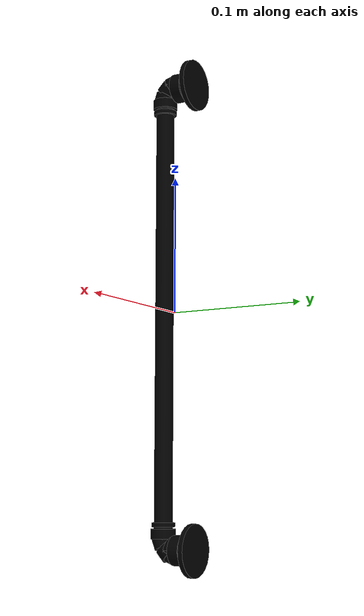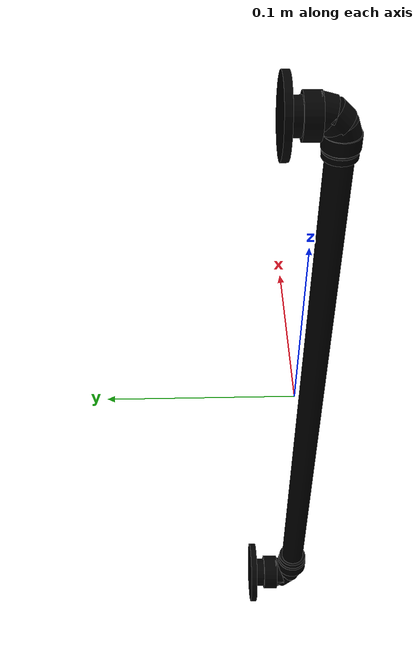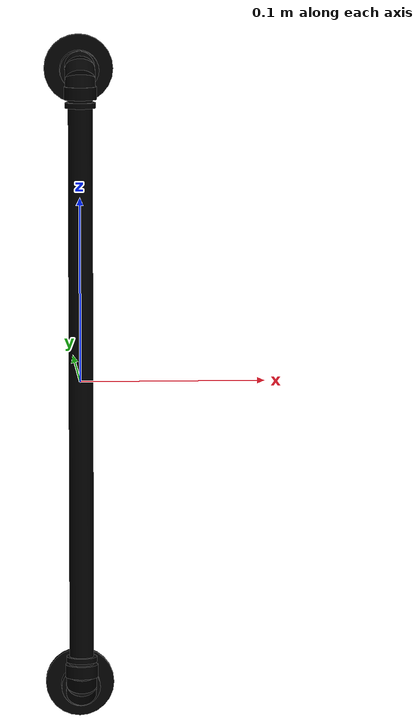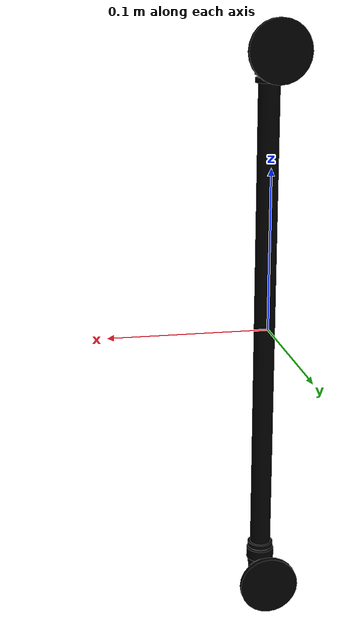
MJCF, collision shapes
<?xml version="1.0" ?>
<mujoco model="model">
    <compiler angle="radian"/>
    <asset>
        <mesh file="visuals/CabinetHandle024.obj" name="mesh"/>
        <texture file="visuals/T_BC001.png" name="tex" type="2d"/>
        <material name="mat" rgba="1 1 1 1.0" texture="tex" shininess="0.5" specular="0.3103448502657381"/>
    </asset>
    <default>
        <default class="visual">
            <geom conaffinity="0" contype="0" group="1" type="mesh"/>
        </default>
        <default class="collision">
            <geom group="0" rgba="0 0 0 0"/>
        </default>
        <default class="spawn">
            <geom group="0" rgba="0 0 0 0" contype="0" conaffinity="0"/>
            <site group="0" rgba="0 0 0 0"/>
        </default>
    </default>
    <worldbody>
        <body>
            <body name="object">
                <geom mesh="mesh" type="mesh" solimp="0.998 0.998 0.001" solref="0.001 1" density="100" friction="0.95 0.3 0.1" class="visual" material="mat"/>
                <geom class="collision" type="cylinder" pos="0.0 -0.008916211314499378 0.0" size="0.006600239314138889 0.15468235313892365" quat="1.0 0.0 0.0 0.0"/>
                <geom class="collision" type="cylinder" pos="2.9699571314267814e-05 -0.008915888145565987 0.15108327567577362" size="0.008304758928716183 0.0014920090325176716" quat="1.0 0.0 0.0 0.0"/>
                <geom class="collision" type="cylinder" pos="2.9699571314267814e-05 -0.008915888145565987 0.15761905908584595" size="0.008858817629516125 0.003446632996201515" quat="1.0 0.0 0.0 0.0"/>
                <geom class="collision" type="cylinder" pos="2.9699571314267814e-05 -0.00847816001623869 0.16166692972183228" size="0.00817962922155857 0.0039684707298874855" quat="0.9868723750114441 -0.16150221228599548 -3.5860694921562405e-17 1.2480973658791685e-24"/>
                <geom class="collision" type="cylinder" pos="2.9699571314267814e-05 -0.005226487759500742 0.16749978065490723" size="0.00817962922155857 0.003968469798564911" quat="0.9256041049957275 -0.3784931004047394 -8.404235094622056e-17 -7.293479073283611e-25"/>
                <geom class="collision" type="cylinder" pos="2.9699571314267814e-05 -0.00012268254067748785 0.1706126183271408" size="0.00817962922155857 0.0039684707298874855" quat="0.7993851900100708 -0.6008188724517822 -1.3340860239994856e-16 -1.4669232986322927e-23"/>
                <geom class="collision" type="cylinder" pos="2.9699571314267814e-05 0.004739060997962952 0.16886334121227264" size="0.01061407383531332 0.004129537381231785" quat="0.7071068286895752 -0.7071067690849304 -0.0 0.0"/>
                <geom class="collision" type="cylinder" pos="2.9699571314267814e-05 0.012249466963112354 0.1688060164451599" size="0.008694551885128021 0.003382723778486252" quat="0.7071068286895752 -0.7071067690849304 -0.0 0.0"/>
                <geom class="collision" type="cylinder" pos="2.9699571314267814e-05 0.016033334657549858 0.16886334121227264" size="0.018710074946284294 0.0017944127321243286" quat="0.7071068286895752 -0.7071067690849304 -0.0 0.0" name="handle_connector"/>
                <geom class="collision" type="cylinder" pos="2.9699571314267814e-05 -0.008915888145565987 -0.15756773948669434" size="0.008858817629516125 0.003446632996201515" quat="1.0 0.0 0.0 0.0"/>
                <geom class="collision" type="cylinder" pos="2.9699571314267814e-05 -0.007790183648467064 -0.16280756890773773" size="0.00817962922155857 0.0039684707298874855" quat="0.9833585023880005 0.18167564272880554 4.0340099622941214e-17 -2.432014586231366e-24"/>
                <geom class="collision" type="cylinder" pos="2.9699571314267814e-05 -0.0036212089471518993 -0.16895698010921478" size="0.00817962922155857 0.003968469798564911" quat="0.9347996711730957 0.3551754951477051 7.886479588167965e-17 -1.36832193720234e-24"/>
                <geom class="collision" type="cylinder" pos="2.9699571314267814e-05 -0.00012268254067748785 -0.16710542142391205" size="0.00817962922155857 0.0039684707298874855" quat="0.7993851900100708 -0.6008188724517822 -1.3340860239994856e-16 -1.4669232986322927e-23"/>
                <geom class="collision" type="cylinder" pos="2.9699571314267814e-05 0.004739060997962952 -0.1688546985387802" size="0.01061407383531332 0.004129537381231785" quat="0.7071068286895752 -0.7071067690849304 -0.0 0.0"/>
                <geom class="collision" type="cylinder" pos="2.9699571314267814e-05 0.012249466963112354 -0.16891202330589294" size="0.008694551885128021 0.003382723778486252" quat="0.7071068286895752 -0.7071067690849304 -0.0 0.0"/>
                <geom class="collision" type="cylinder" pos="2.9699571314267814e-05 0.016033334657549858 -0.1688546985387802" size="0.018710074946284294 0.0017944127321243286" quat="0.7071068286895752 -0.7071067690849304 -0.0 0.0"/>
                <geom class="collision" type="cylinder" pos="2.9699571314267814e-05 -0.008915888145565987 -0.15116557478904724" size="0.008304758928716183 0.0014920090325176716" quat="1.0 0.0 0.0 0.0"/>
                <geom class="collision" type="cylinder" pos="2.9699571314267814e-05 -0.00012268254067748785 -0.1702662706375122" size="0.00817962922155857 0.0039684707298874855" quat="0.5802639722824097 -0.814428448677063 -1.808394563610944e-16 -5.135739295061173e-24"/>
            </body>
        </body>
    </worldbody>
    <actuator/>
</mujoco>
